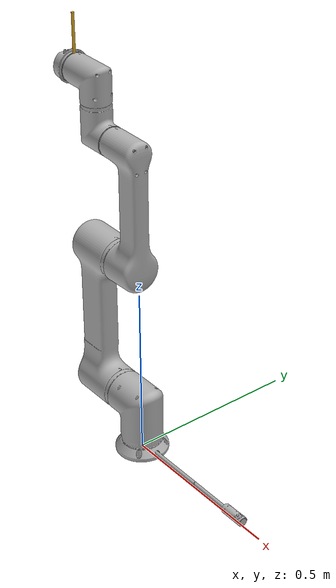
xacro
<?xml version="1.0"?>
<robot name="hcr_robot_pen" xmlns:xacro="http://www.ros.org/wiki/xacro">

  <xacro:arg name="ros2_control" default="false"/>

  <!-- MuJoCo 가 로드할 씬. **변환 산출물이라 git 제외 영역에 생긴다** —
       robot_description_to_mjcf.sh 의 -o 로 지정한 곳과 맞춰야 한다. -->
  <xacro:arg name="mujoco_scene" default="/home/rosuser/data/mjcf/scene.xml"/>
  <xacro:arg name="headless" default="false"/>

  <!-- 원본 로봇 (링크 7 · 조인트 6, inertial 전부 있음 — MuJoCo 변환 가능) -->
  <xacro:include filename="$(find hcr_robot_description)/urdf/hcr_robot.xacro"/>

  <!--
    로봇을 월드에 고정한다. 원본 xacro 에는 world 링크가 없고 플랫 URDF 에만 있다 —
    시뮬에서는 베이스가 떠 있으면 안 되므로 여기서 붙인다.
    BRD §2.3: 철제 책상 상판에 수평 고정.
  -->
  <link name="world"/>
  <joint name="world_to_base" type="fixed">
    <parent link="world"/>
    <child link="base_link"/>
    <origin xyz="0 0 0" rpy="0 0 0"/>
  </joint>

  <xacro:property name="pen_length" value="0.150"/>   <!-- 연필 전체 길이 -->
  <xacro:property name="pen_radius" value="0.004"/>   <!-- 연필 반지름 -->
  <xacro:property name="pen_mass"   value="0.010"/>

  <link name="pen_link">
    <visual>
      <origin xyz="0 0 ${pen_length/2}" rpy="0 0 0"/>
      <geometry><cylinder radius="${pen_radius}" length="${pen_length}"/></geometry>
      <material name="pencil"><color rgba="0.85 0.65 0.13 1"/></material>
    </visual>
    <collision>
      <origin xyz="0 0 ${pen_length/2}" rpy="0 0 0"/>
      <geometry><cylinder radius="${pen_radius}" length="${pen_length}"/></geometry>
    </collision>
    <inertial>
      <!-- MuJoCo 는 inertial 이 없으면 변환에서 걸린다 (find_missing_inertias.py) -->
      <origin xyz="0 0 ${pen_length/2}" rpy="0 0 0"/>
      <mass value="${pen_mass}"/>
      <inertia ixx="${pen_mass*(3*pen_radius*pen_radius + pen_length*pen_length)/12}" ixy="0" ixz="0"
               iyy="${pen_mass*(3*pen_radius*pen_radius + pen_length*pen_length)/12}" iyz="0"
               izz="${pen_mass*pen_radius*pen_radius/2}"/>
    </inertial>
  </link>

  <!-- 플랜지 직결 — 그리퍼 없음 (BRD §2.2) -->
  <joint name="pen_joint" type="fixed">
    <parent link="link6_1"/>
    <child link="pen_link"/>
    <origin xyz="0 0 0" rpy="0 0 0"/>
  </joint>

  <!-- 펜 **끝**. 종이와 닿는 지점이며 접촉·필압을 여기서 본다. -->
  <link name="pen_tip"/>
  <joint name="pen_tip_joint" type="fixed">
    <parent link="pen_link"/>
    <child link="pen_tip"/>
    <origin xyz="0 0 ${pen_length}" rpy="0 0 0"/>
  </joint>

  <ros2_control name="hcr_robot_mujoco" type="system">
    <hardware>
      <plugin>mujoco_ros2_control/MujocoSystemInterface</plugin>

      <!-- 씬은 launch 파라미터가 아니라 **여기 hardware param 으로** 넘긴다
           (mujoco_ros2_control 규약 — demos 의 test_robot.urdf 와 같은 방식) -->
      <param name="mujoco_model">$(arg mujoco_scene)</param>
      <!-- true 면 Simulate 창을 띄우지 않는다. 확인 경로가 SVG 라 headless 로도 결과가 나온다 -->
      <param name="headless">$(arg headless)</param>
      <param name="sim_speed_factor">1.0</param>
    </hardware>

    <xacro:macro name="mujoco_joint" params="name initial">
      <joint name="${name}">
        <command_interface name="position"/>
        <state_interface name="position"><param name="initial_value">${initial}</param></state_interface>
        <state_interface name="velocity"/>
        <!-- mock 에는 없던 것 — 접촉 반력이 관절에 실리는지 보려면 필요하다 -->
        <state_interface name="effort"/>
      </joint>
    </xacro:macro>

    <!-- 초기 자세는 원본 ros2_control.xacro 의 initial_value 를 그대로 따른다 -->
    <xacro:mujoco_joint name="joint_1" initial="0"/>
    <xacro:mujoco_joint name="joint_2" initial="0"/>
    <xacro:mujoco_joint name="joint_3" initial="1.5669"/>
    <xacro:mujoco_joint name="joint_4" initial="-1.59"/>
    <xacro:mujoco_joint name="joint_5" initial="-1.4695"/>
    <xacro:mujoco_joint name="joint_6" initial="0"/>
  </ros2_control>

</robot>

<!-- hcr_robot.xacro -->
<robot name="hcr_robot" xmlns:xacro="http://www.ros.org/wiki/xacro">

<xacro:include filename="$(find hcr_robot_description)/urdf/materials.xacro" />
<xacro:include filename="$(find hcr_robot_description)/urdf/hcr_robot.trans" />
<xacro:include filename="$(find hcr_robot_description)/urdf/hcr_robot.gazebo" />
<xacro:arg name="ros2_control" default="true"/>
<xacro:arg name="hardware_plugin" default="mock_components/GenericSystem"/>

<xacro:include filename="$(find hcr_robot_description)/urdf/hcr_robot.ros2_control.xacro" />
<xacro:if value="$(arg ros2_control)">
  <xacro:hcr_robot_ros2_control plugin="$(arg hardware_plugin)"/>
</xacro:if>
<link name="base_link">
  <inertial>
    <origin xyz="0.044693591972953806 -9.689819846991377e-05 0.013982771179495564" rpy="0 0 0"/>
    <mass value="4.071462983655495"/>
    <inertia ixx="0.004614" iyy="0.063084" izz="0.067151" ixy="-2e-05" iyz="0.0" ixz="-0.000189"/>
  </inertial>
  <visual>
    <origin xyz="0 0 0" rpy="0 0 0"/>
    <geometry>
      <mesh filename="package://hcr_robot_description/meshes/base_link.stl" scale="0.001 0.001 0.001"/>
    </geometry>
    <material name="silver"/>
  </visual>
  <collision>
    <origin xyz="0 0 0" rpy="0 0 0"/>
    <geometry>
      <mesh filename="package://hcr_robot_description/meshes/base_link.stl" scale="0.001 0.001 0.001"/>
    </geometry>
  </collision>
</link>

<link name="link1_1">
  <inertial>
    <origin xyz="-0.009232924655966162 5.611908895686318e-08 0.08981078121700108" rpy="0 0 0"/>
    <mass value="17.125748524580114"/>
    <inertia ixx="0.054601" iyy="0.061186" izz="0.036738" ixy="0.0" iyz="-0.0" ixz="0.004569"/>
  </inertial>
  <visual>
    <origin xyz="-0.0 0.0 -0.03" rpy="0 0 0"/>
    <geometry>
      <mesh filename="package://hcr_robot_description/meshes/link1_1.stl" scale="0.001 0.001 0.001"/>
    </geometry>
    <material name="silver"/>
  </visual>
  <collision>
    <origin xyz="-0.0 0.0 -0.03" rpy="0 0 0"/>
    <geometry>
      <mesh filename="package://hcr_robot_description/meshes/link1_1.stl" scale="0.001 0.001 0.001"/>
    </geometry>
  </collision>
</link>

<link name="link2_1">
  <inertial>
    <origin xyz="-0.08134423156498356 0.0004999972193747809 0.21200027982915884" rpy="0 0 0"/>
    <mass value="32.073698785630135"/>
    <inertia ixx="1.334728" iyy="1.368804" izz="0.0845" ixy="-5e-06" iyz="-0.003172" ixz="-0.002068"/>
  </inertial>
  <visual>
    <origin xyz="0.0785 0.0 -0.148778" rpy="0 0 0"/>
    <geometry>
      <mesh filename="package://hcr_robot_description/meshes/link2_1.stl" scale="0.001 0.001 0.001"/>
    </geometry>
    <material name="silver"/>
  </visual>
  <collision>
    <origin xyz="0.0785 0.0 -0.148778" rpy="0 0 0"/>
    <geometry>
      <mesh filename="package://hcr_robot_description/meshes/link2_1.stl" scale="0.001 0.001 0.001"/>
    </geometry>
  </collision>
</link>

<link name="link3_1">
  <inertial>
    <origin xyz="0.03733088153046067 -8.45436915776097e-06 0.32700293666580915" rpy="0 0 0"/>
    <mass value="6.636542484506931"/>
    <inertia ixx="0.008668" iyy="0.014027" izz="0.010649" ixy="-0.0" iyz="0.0" ixz="0.001661"/>
  </inertial>
  <visual>
    <origin xyz="0.077848 -0.001 -0.572778" rpy="0 0 0"/>
    <geometry>
      <mesh filename="package://hcr_robot_description/meshes/link3_1.stl" scale="0.001 0.001 0.001"/>
    </geometry>
    <material name="silver"/>
  </visual>
  <collision>
    <origin xyz="0.077848 -0.001 -0.572778" rpy="0 0 0"/>
    <geometry>
      <mesh filename="package://hcr_robot_description/meshes/link3_1.stl" scale="0.001 0.001 0.001"/>
    </geometry>
  </collision>
</link>

<link name="link4_1">
  <inertial>
    <origin xyz="-0.053462210233883714 -3.2261679182082545e-07 0.022076827880824546" rpy="0 0 0"/>
    <mass value="6.518501202798632"/>
    <inertia ixx="0.011005" iyy="0.012783" izz="0.007491" ixy="-0.0" iyz="0.0" ixz="0.001222"/>
  </inertial>
  <visual>
    <origin xyz="0.107864 -0.000992 -0.911345" rpy="0 0 0"/>
    <geometry>
      <mesh filename="package://hcr_robot_description/meshes/link4_1.stl" scale="0.001 0.001 0.001"/>
    </geometry>
    <material name="silver"/>
  </visual>
  <collision>
    <origin xyz="0.107864 -0.000992 -0.911345" rpy="0 0 0"/>
    <geometry>
      <mesh filename="package://hcr_robot_description/meshes/link4_1.stl" scale="0.001 0.001 0.001"/>
    </geometry>
  </collision>
</link>

<link name="link5_1">
  <inertial>
    <origin xyz="-0.022082116809040042 -5.860596366637823e-07 0.0534553107989999" rpy="0 0 0"/>
    <mass value="6.518501237017786"/>
    <inertia ixx="0.007541" iyy="0.012794" izz="0.010966" ixy="0.0" iyz="-0.0" ixz="0.001224"/>
  </inertial>
  <visual>
    <origin xyz="0.169864 -0.000992 -1.000941" rpy="0 0 0"/>
    <geometry>
      <mesh filename="package://hcr_robot_description/meshes/link5_1.stl" scale="0.001 0.001 0.001"/>
    </geometry>
    <material name="silver"/>
  </visual>
  <collision>
    <origin xyz="0.169864 -0.000992 -1.000941" rpy="0 0 0"/>
    <geometry>
      <mesh filename="package://hcr_robot_description/meshes/link5_1.stl" scale="0.001 0.001 0.001"/>
    </geometry>
  </collision>
</link>

<link name="link6_1">
  <inertial>
    <origin xyz="-0.019264152679962065 -4.5474100852818493e-07 -0.0005907014657897669" rpy="0 0 0"/>
    <mass value="1.6914762668461325"/>
    <inertia ixx="0.001473" iyy="0.00094" izz="0.000976" ixy="0.0" iyz="0.0" ixz="-8e-06"/>
  </inertial>
  <visual>
    <origin xyz="0.25946 -0.000992 -1.062941" rpy="0 0 0"/>
    <geometry>
      <mesh filename="package://hcr_robot_description/meshes/link6_1.stl" scale="0.001 0.001 0.001"/>
    </geometry>
    <material name="silver"/>
  </visual>
  <collision>
    <origin xyz="0.25946 -0.000992 -1.062941" rpy="0 0 0"/>
    <geometry>
      <mesh filename="package://hcr_robot_description/meshes/link6_1.stl" scale="0.001 0.001 0.001"/>
    </geometry>
  </collision>
</link>

<joint name="joint_1" type="revolute">
  <origin xyz="0.0 0.0 0.03" rpy="0 0 0"/>
  <parent link="base_link"/>
  <child link="link1_1"/>
  <axis xyz="0.0 -0.0 1.0"/>
  <limit upper="6.283185" lower="0.0" effort="100" velocity="100"/>
</joint>

<joint name="joint_2" type="revolute">
  <origin xyz="-0.0785 0.0 0.118778" rpy="0 0 0"/>
  <parent link="link1_1"/>
  <child link="link2_1"/>
  <axis xyz="-1.0 0.0 0.0"/>
  <limit upper="1.570796" lower="-1.570796" effort="100" velocity="100"/>
</joint>

<joint name="joint_3" type="revolute">
  <origin xyz="0.000652 0.001 0.424" rpy="0 0 0"/>
  <parent link="link2_1"/>
  <child link="link3_1"/>
  <axis xyz="1.0 0.0 0.0"/>
  <limit upper="2.268928" lower="-2.268928" effort="100" velocity="100"/>
</joint>

<joint name="joint_4" type="revolute">
  <origin xyz="-0.030016 -8e-06 0.338567" rpy="0 0 0"/>
  <parent link="link3_1"/>
  <child link="link4_1"/>
  <axis xyz="-1.0 0.0 -0.0"/>
  <limit upper="2.96706" lower="-2.96706" effort="100" velocity="100"/>
</joint>

<joint name="joint_5" type="revolute">
  <origin xyz="-0.062 0.0 0.089596" rpy="0 0 0"/>
  <parent link="link4_1"/>
  <child link="link5_1"/>
  <axis xyz="-0.0 -0.0 1.0"/>
  <limit upper="2.094395" lower="-2.094395" effort="100" velocity="100"/>
</joint>

<joint name="joint_6" type="revolute">
  <origin xyz="-0.089596 0.0 0.062" rpy="0 0 0"/>
  <parent link="link5_1"/>
  <child link="link6_1"/>
  <axis xyz="-1.0 -0.0 0.0"/>
  <limit upper="6.283185" lower="0.0" effort="100" velocity="100"/>
</joint>

</robot>

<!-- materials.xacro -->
<robot name="hcr_robot" xmlns:xacro="http://www.ros.org/wiki/xacro" >

<material name="silver">
  <color rgba="0.700 0.700 0.700 1.000"/>
</material>

</robot>

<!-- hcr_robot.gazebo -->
<robot name="hcr_robot" xmlns:xacro="http://www.ros.org/wiki/xacro" >

<xacro:property name="body_color" value="Gazebo/Silver" />

<gazebo>
  <plugin name="control" filename="libgazebo_ros_control.so"/>
</gazebo>
<gazebo reference="base_link">
  <material>${body_color}</material>
  <mu1>0.2</mu1>
  <mu2>0.2</mu2>
  <selfCollide>true</selfCollide>
  <gravity>true</gravity>
</gazebo>

<gazebo reference="link1_1">
  <material>${body_color}</material>
  <mu1>0.2</mu1>
  <mu2>0.2</mu2>
  <selfCollide>true</selfCollide>
</gazebo>

<gazebo reference="link2_1">
  <material>${body_color}</material>
  <mu1>0.2</mu1>
  <mu2>0.2</mu2>
  <selfCollide>true</selfCollide>
</gazebo>

<gazebo reference="link3_1">
  <material>${body_color}</material>
  <mu1>0.2</mu1>
  <mu2>0.2</mu2>
  <selfCollide>true</selfCollide>
</gazebo>

<gazebo reference="link4_1">
  <material>${body_color}</material>
  <mu1>0.2</mu1>
  <mu2>0.2</mu2>
  <selfCollide>true</selfCollide>
</gazebo>

<gazebo reference="link5_1">
  <material>${body_color}</material>
  <mu1>0.2</mu1>
  <mu2>0.2</mu2>
  <selfCollide>true</selfCollide>
</gazebo>

<gazebo reference="link6_1">
  <material>${body_color}</material>
  <mu1>0.2</mu1>
  <mu2>0.2</mu2>
  <selfCollide>true</selfCollide>
</gazebo>

</robot>
